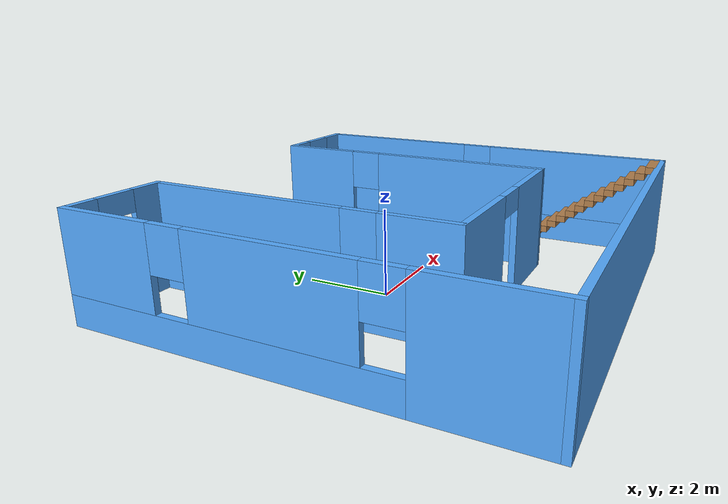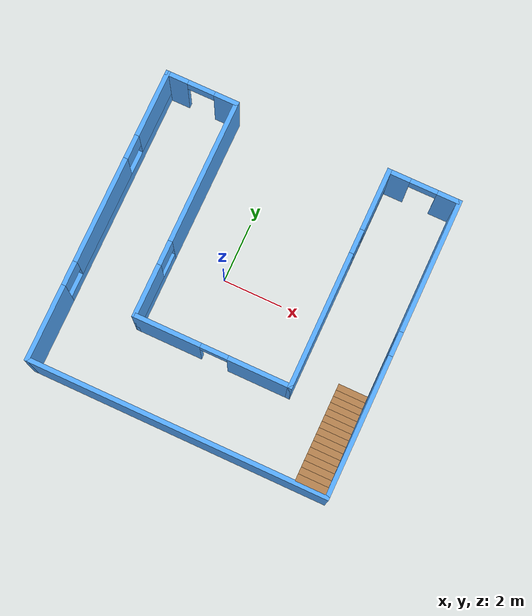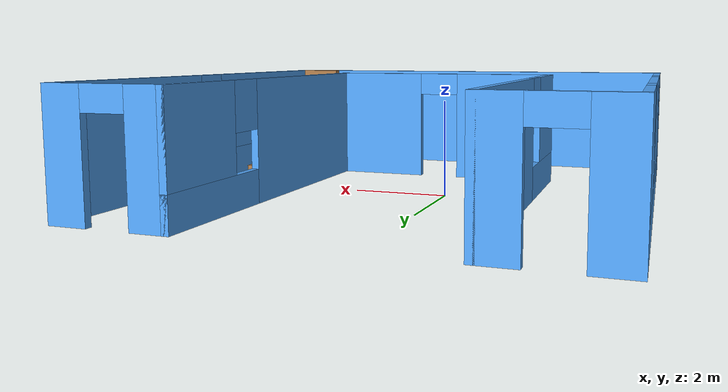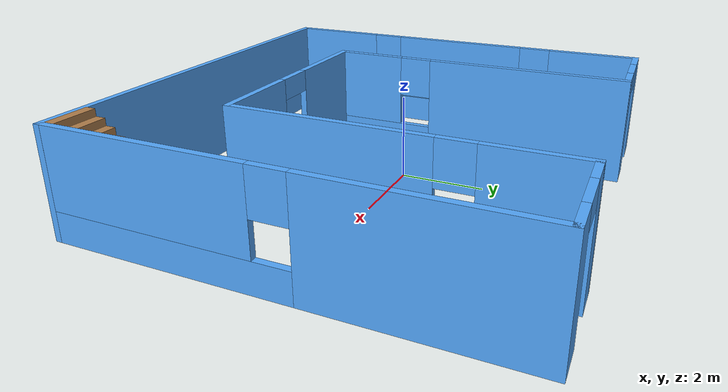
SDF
<?xml version='1.0'?>
<sdf version='1.6'>
  <model name='mybuilding'>
    <pose frame=''>0.795 -0.124998 0 0 -0 0</pose>
    <link name='Stairs_0'>
      <visual name='Stairs_0_Visual_0'>
        <pose frame=''>4.355 -1.49167 0.083333 0 -0 0</pose>
        <geometry>
          <box>
            <size>1 0.233333 0.166667</size>
          </box>
        </geometry>
        <material>
          <script>
            <uri>file://media/materials/scripts/gazebo.material</uri>
            <name>Gazebo/Wood</name>
          </script>
          <ambient>1 1 1 1</ambient>
        </material>
        <meta>
          <layer>0</layer>
        </meta>
      </visual>
      <collision name='Stairs_0_Collision_0'>
        <geometry>
          <box>
            <size>1 0.233333 0.166667</size>
          </box>
        </geometry>
        <pose frame=''>4.355 -1.49167 0.083333 0 -0 0</pose>
      </collision>
      <visual name='Stairs_0_Visual_1'>
        <pose frame=''>4.355 -1.725 0.25 0 -0 0</pose>
        <geometry>
          <box>
            <size>1 0.233333 0.166667</size>
          </box>
        </geometry>
        <material>
          <script>
            <uri>file://media/materials/scripts/gazebo.material</uri>
            <name>Gazebo/Wood</name>
          </script>
          <ambient>1 1 1 1</ambient>
        </material>
        <meta>
          <layer>0</layer>
        </meta>
      </visual>
      <collision name='Stairs_0_Collision_1'>
        <geometry>
          <box>
            <size>1 0.233333 0.166667</size>
          </box>
        </geometry>
        <pose frame=''>4.355 -1.725 0.25 0 -0 0</pose>
      </collision>
      <visual name='Stairs_0_Visual_2'>
        <pose frame=''>4.355 -1.95833 0.416667 0 -0 0</pose>
        <geometry>
          <box>
            <size>1 0.233333 0.166667</size>
          </box>
        </geometry>
        <material>
          <script>
            <uri>file://media/materials/scripts/gazebo.material</uri>
            <name>Gazebo/Wood</name>
          </script>
          <ambient>1 1 1 1</ambient>
        </material>
        <meta>
          <layer>0</layer>
        </meta>
      </visual>
      <collision name='Stairs_0_Collision_2'>
        <geometry>
          <box>
            <size>1 0.233333 0.166667</size>
          </box>
        </geometry>
        <pose frame=''>4.355 -1.95833 0.416667 0 -0 0</pose>
      </collision>
      <visual name='Stairs_0_Visual_3'>
        <pose frame=''>4.355 -2.19167 0.583333 0 -0 0</pose>
        <geometry>
          <box>
            <size>1 0.233333 0.166667</size>
          </box>
        </geometry>
        <material>
          <script>
            <uri>file://media/materials/scripts/gazebo.material</uri>
            <name>Gazebo/Wood</name>
          </script>
          <ambient>1 1 1 1</ambient>
        </material>
        <meta>
          <layer>0</layer>
        </meta>
      </visual>
      <collision name='Stairs_0_Collision_3'>
        <geometry>
          <box>
            <size>1 0.233333 0.166667</size>
          </box>
        </geometry>
        <pose frame=''>4.355 -2.19167 0.583333 0 -0 0</pose>
      </collision>
      <visual name='Stairs_0_Visual_4'>
        <pose frame=''>4.355 -2.425 0.75 0 -0 0</pose>
        <geometry>
          <box>
            <size>1 0.233333 0.166667</size>
          </box>
        </geometry>
        <material>
          <script>
            <uri>file://media/materials/scripts/gazebo.material</uri>
            <name>Gazebo/Wood</name>
          </script>
          <ambient>1 1 1 1</ambient>
        </material>
        <meta>
          <layer>0</layer>
        </meta>
      </visual>
      <collision name='Stairs_0_Collision_4'>
        <geometry>
          <box>
            <size>1 0.233333 0.166667</size>
          </box>
        </geometry>
        <pose frame=''>4.355 -2.425 0.75 0 -0 0</pose>
      </collision>
      <visual name='Stairs_0_Visual_5'>
        <pose frame=''>4.355 -2.65834 0.916667 0 -0 0</pose>
        <geometry>
          <box>
            <size>1 0.233333 0.166667</size>
          </box>
        </geometry>
        <material>
          <script>
            <uri>file://media/materials/scripts/gazebo.material</uri>
            <name>Gazebo/Wood</name>
          </script>
          <ambient>1 1 1 1</ambient>
        </material>
        <meta>
          <layer>0</layer>
        </meta>
      </visual>
      <collision name='Stairs_0_Collision_5'>
        <geometry>
          <box>
            <size>1 0.233333 0.166667</size>
          </box>
        </geometry>
        <pose frame=''>4.355 -2.65834 0.916667 0 -0 0</pose>
      </collision>
      <visual name='Stairs_0_Visual_6'>
        <pose frame=''>4.355 -2.89167 1.08333 0 -0 0</pose>
        <geometry>
          <box>
            <size>1 0.233333 0.166667</size>
          </box>
        </geometry>
        <material>
          <script>
            <uri>file://media/materials/scripts/gazebo.material</uri>
            <name>Gazebo/Wood</name>
          </script>
          <ambient>1 1 1 1</ambient>
        </material>
        <meta>
          <layer>0</layer>
        </meta>
      </visual>
      <collision name='Stairs_0_Collision_6'>
        <geometry>
          <box>
            <size>1 0.233333 0.166667</size>
          </box>
        </geometry>
        <pose frame=''>4.355 -2.89167 1.08333 0 -0 0</pose>
      </collision>
      <visual name='Stairs_0_Visual_7'>
        <pose frame=''>4.355 -3.125 1.25 0 -0 0</pose>
        <geometry>
          <box>
            <size>1 0.233333 0.166667</size>
          </box>
        </geometry>
        <material>
          <script>
            <uri>file://media/materials/scripts/gazebo.material</uri>
            <name>Gazebo/Wood</name>
          </script>
          <ambient>1 1 1 1</ambient>
        </material>
        <meta>
          <layer>0</layer>
        </meta>
      </visual>
      <collision name='Stairs_0_Collision_7'>
        <geometry>
          <box>
            <size>1 0.233333 0.166667</size>
          </box>
        </geometry>
        <pose frame=''>4.355 -3.125 1.25 0 -0 0</pose>
      </collision>
      <visual name='Stairs_0_Visual_8'>
        <pose frame=''>4.355 -3.35833 1.41667 0 -0 0</pose>
        <geometry>
          <box>
            <size>1 0.233333 0.166667</size>
          </box>
        </geometry>
        <material>
          <script>
            <uri>file://media/materials/scripts/gazebo.material</uri>
            <name>Gazebo/Wood</name>
          </script>
          <ambient>1 1 1 1</ambient>
        </material>
        <meta>
          <layer>0</layer>
        </meta>
      </visual>
      <collision name='Stairs_0_Collision_8'>
        <geometry>
          <box>
            <size>1 0.233333 0.166667</size>
          </box>
        </geometry>
        <pose frame=''>4.355 -3.35833 1.41667 0 -0 0</pose>
      </collision>
      <visual name='Stairs_0_Visual_9'>
        <pose frame=''>4.355 -3.59167 1.58333 0 -0 0</pose>
        <geometry>
          <box>
            <size>1 0.233333 0.166667</size>
          </box>
        </geometry>
        <material>
          <script>
            <uri>file://media/materials/scripts/gazebo.material</uri>
            <name>Gazebo/Wood</name>
          </script>
          <ambient>1 1 1 1</ambient>
        </material>
        <meta>
          <layer>0</layer>
        </meta>
      </visual>
      <collision name='Stairs_0_Collision_9'>
        <geometry>
          <box>
            <size>1 0.233333 0.166667</size>
          </box>
        </geometry>
        <pose frame=''>4.355 -3.59167 1.58333 0 -0 0</pose>
      </collision>
      <visual name='Stairs_0_Visual_10'>
        <pose frame=''>4.355 -3.825 1.75 0 -0 0</pose>
        <geometry>
          <box>
            <size>1 0.233333 0.166667</size>
          </box>
        </geometry>
        <material>
          <script>
            <uri>file://media/materials/scripts/gazebo.material</uri>
            <name>Gazebo/Wood</name>
          </script>
          <ambient>1 1 1 1</ambient>
        </material>
        <meta>
          <layer>0</layer>
        </meta>
      </visual>
      <collision name='Stairs_0_Collision_10'>
        <geometry>
          <box>
            <size>1 0.233333 0.166667</size>
          </box>
        </geometry>
        <pose frame=''>4.355 -3.825 1.75 0 -0 0</pose>
      </collision>
      <visual name='Stairs_0_Visual_11'>
        <pose frame=''>4.355 -4.05833 1.91667 0 -0 0</pose>
        <geometry>
          <box>
            <size>1 0.233333 0.166667</size>
          </box>
        </geometry>
        <material>
          <script>
            <uri>file://media/materials/scripts/gazebo.material</uri>
            <name>Gazebo/Wood</name>
          </script>
          <ambient>1 1 1 1</ambient>
        </material>
        <meta>
          <layer>0</layer>
        </meta>
      </visual>
      <collision name='Stairs_0_Collision_11'>
        <geometry>
          <box>
            <size>1 0.233333 0.166667</size>
          </box>
        </geometry>
        <pose frame=''>4.355 -4.05833 1.91667 0 -0 0</pose>
      </collision>
      <visual name='Stairs_0_Visual_12'>
        <pose frame=''>4.355 -4.29167 2.08333 0 -0 0</pose>
        <geometry>
          <box>
            <size>1 0.233333 0.166667</size>
          </box>
        </geometry>
        <material>
          <script>
            <uri>file://media/materials/scripts/gazebo.material</uri>
            <name>Gazebo/Wood</name>
          </script>
          <ambient>1 1 1 1</ambient>
        </material>
        <meta>
          <layer>0</layer>
        </meta>
      </visual>
      <collision name='Stairs_0_Collision_12'>
        <geometry>
          <box>
            <size>1 0.233333 0.166667</size>
          </box>
        </geometry>
        <pose frame=''>4.355 -4.29167 2.08333 0 -0 0</pose>
      </collision>
      <visual name='Stairs_0_Visual_13'>
        <pose frame=''>4.355 -4.525 2.25 0 -0 0</pose>
        <geometry>
          <box>
            <size>1 0.233333 0.166667</size>
          </box>
        </geometry>
        <material>
          <script>
            <uri>file://media/materials/scripts/gazebo.material</uri>
            <name>Gazebo/Wood</name>
          </script>
          <ambient>1 1 1 1</ambient>
        </material>
        <meta>
          <layer>0</layer>
        </meta>
      </visual>
      <collision name='Stairs_0_Collision_13'>
        <geometry>
          <box>
            <size>1 0.233333 0.166667</size>
          </box>
        </geometry>
        <pose frame=''>4.355 -4.525 2.25 0 -0 0</pose>
      </collision>
      <visual name='Stairs_0_Visual_14'>
        <pose frame=''>4.355 -4.75833 2.41667 0 -0 0</pose>
        <geometry>
          <box>
            <size>1 0.233333 0.166667</size>
          </box>
        </geometry>
        <material>
          <script>
            <uri>file://media/materials/scripts/gazebo.material</uri>
            <name>Gazebo/Wood</name>
          </script>
          <ambient>1 1 1 1</ambient>
        </material>
        <meta>
          <layer>0</layer>
        </meta>
      </visual>
      <collision name='Stairs_0_Collision_14'>
        <geometry>
          <box>
            <size>1 0.233333 0.166667</size>
          </box>
        </geometry>
        <pose frame=''>4.355 -4.75833 2.41667 0 -0 0</pose>
      </collision>
    </link>
    <link name='Wall_40'>
      <pose frame=''>-3.75 4.925 0 0 -0 0</pose>
      <visual name='Wall_40_Visual_0'>
        <pose frame=''>-0.8575 0 1.25 0 -0 0</pose>
        <geometry>
          <box>
            <size>0.785 0.15 2.5</size>
          </box>
        </geometry>
        <material>
          <script>
            <uri>file://media/materials/scripts/gazebo.material</uri>
            <name>Gazebo/Grey</name>
          </script>
          <ambient>0.333333 0.666667 1 1</ambient>
        </material>
        <meta>
          <layer>0</layer>
        </meta>
      </visual>
      <collision name='Wall_40_Collision_0'>
        <geometry>
          <box>
            <size>0.785 0.15 2.5</size>
          </box>
        </geometry>
        <pose frame=''>-0.8575 0 1.25 0 -0 0</pose>
      </collision>
      <visual name='Wall_40_Visual_1'>
        <pose frame=''>0.8425 0 1.25 0 -0 0</pose>
        <geometry>
          <box>
            <size>0.815 0.15 2.5</size>
          </box>
        </geometry>
        <material>
          <script>
            <uri>file://media/materials/scripts/gazebo.material</uri>
            <name>Gazebo/Grey</name>
          </script>
          <ambient>0.333333 0.666667 1 1</ambient>
        </material>
        <meta>
          <layer>0</layer>
        </meta>
      </visual>
      <collision name='Wall_40_Collision_1'>
        <geometry>
          <box>
            <size>0.815 0.15 2.5</size>
          </box>
        </geometry>
        <pose frame=''>0.8425 0 1.25 0 -0 0</pose>
      </collision>
      <visual name='Wall_40_Visual_2'>
        <pose frame=''>-0.015 0 2.25 0 -0 0</pose>
        <geometry>
          <box>
            <size>0.9 0.15 0.5</size>
          </box>
        </geometry>
        <material>
          <script>
            <uri>file://media/materials/scripts/gazebo.material</uri>
            <name>Gazebo/Grey</name>
          </script>
          <ambient>0.333333 0.666667 1 1</ambient>
        </material>
        <meta>
          <layer>0</layer>
        </meta>
      </visual>
      <collision name='Wall_40_Collision_2'>
        <geometry>
          <box>
            <size>0.9 0.15 0.5</size>
          </box>
        </geometry>
        <pose frame=''>-0.015 0 2.25 0 -0 0</pose>
      </collision>
    </link>
    <link name='Wall_41'>
      <pose frame=''>-2.575 1.275 0 0 0 -1.5708</pose>
      <visual name='Wall_41_Visual_0'>
        <pose frame=''>-1.2925 0 1.25 0 -0 0</pose>
        <geometry>
          <box>
            <size>4.865 0.15 2.5</size>
          </box>
        </geometry>
        <material>
          <script>
            <uri>file://media/materials/scripts/gazebo.material</uri>
            <name>Gazebo/Grey</name>
          </script>
          <ambient>0.333333 0.666667 1 1</ambient>
        </material>
        <meta>
          <layer>0</layer>
        </meta>
      </visual>
      <collision name='Wall_41_Collision_0'>
        <geometry>
          <box>
            <size>4.865 0.15 2.5</size>
          </box>
        </geometry>
        <pose frame=''>-1.2925 0 1.25 0 -0 0</pose>
      </collision>
      <visual name='Wall_41_Visual_1'>
        <pose frame=''>2.4325 0 0.35 0 -0 0</pose>
        <geometry>
          <box>
            <size>2.585 0.15 0.7</size>
          </box>
        </geometry>
        <material>
          <script>
            <uri>file://media/materials/scripts/gazebo.material</uri>
            <name>Gazebo/Grey</name>
          </script>
          <ambient>0.333333 0.666667 1 1</ambient>
        </material>
        <meta>
          <layer>0</layer>
        </meta>
      </visual>
      <collision name='Wall_41_Collision_1'>
        <geometry>
          <box>
            <size>2.585 0.15 0.7</size>
          </box>
        </geometry>
        <pose frame=''>2.4325 0 0.35 0 -0 0</pose>
      </collision>
      <visual name='Wall_41_Visual_2'>
        <pose frame=''>2.8325 0 1.6 0 -0 0</pose>
        <geometry>
          <box>
            <size>1.785 0.15 1.8</size>
          </box>
        </geometry>
        <material>
          <script>
            <uri>file://media/materials/scripts/gazebo.material</uri>
            <name>Gazebo/Grey</name>
          </script>
          <ambient>0.333333 0.666667 1 1</ambient>
        </material>
        <meta>
          <layer>0</layer>
        </meta>
      </visual>
      <collision name='Wall_41_Collision_2'>
        <geometry>
          <box>
            <size>1.785 0.15 1.8</size>
          </box>
        </geometry>
        <pose frame=''>2.8325 0 1.6 0 -0 0</pose>
      </collision>
      <visual name='Wall_41_Visual_3'>
        <pose frame=''>1.54 0 2 0 -0 0</pose>
        <geometry>
          <box>
            <size>0.8 0.15 1</size>
          </box>
        </geometry>
        <material>
          <script>
            <uri>file://media/materials/scripts/gazebo.material</uri>
            <name>Gazebo/Grey</name>
          </script>
          <ambient>0.333333 0.666667 1 1</ambient>
        </material>
        <meta>
          <layer>0</layer>
        </meta>
      </visual>
      <collision name='Wall_41_Collision_3'>
        <geometry>
          <box>
            <size>0.8 0.15 1</size>
          </box>
        </geometry>
        <pose frame=''>1.54 0 2 0 -0 0</pose>
      </collision>
    </link>
    <link name='Wall_42'>
      <pose frame=''>0 -2.375 0 0 -0 0</pose>
      <visual name='Wall_42_Visual_0'>
        <pose frame=''>-1.5175 0 1.25 0 -0 0</pose>
        <geometry>
          <box>
            <size>2.265 0.15 2.5</size>
          </box>
        </geometry>
        <material>
          <script>
            <uri>file://media/materials/scripts/gazebo.material</uri>
            <name>Gazebo/Grey</name>
          </script>
          <ambient>0.333333 0.666667 1 1</ambient>
        </material>
        <meta>
          <layer>0</layer>
        </meta>
      </visual>
      <collision name='Wall_42_Collision_0'>
        <geometry>
          <box>
            <size>2.265 0.15 2.5</size>
          </box>
        </geometry>
        <pose frame=''>-1.5175 0 1.25 0 -0 0</pose>
      </collision>
      <visual name='Wall_42_Visual_1'>
        <pose frame=''>1.5825 0 1.25 0 -0 0</pose>
        <geometry>
          <box>
            <size>2.135 0.15 2.5</size>
          </box>
        </geometry>
        <material>
          <script>
            <uri>file://media/materials/scripts/gazebo.material</uri>
            <name>Gazebo/Grey</name>
          </script>
          <ambient>0.333333 0.666667 1 1</ambient>
        </material>
        <meta>
          <layer>0</layer>
        </meta>
      </visual>
      <collision name='Wall_42_Collision_1'>
        <geometry>
          <box>
            <size>2.135 0.15 2.5</size>
          </box>
        </geometry>
        <pose frame=''>1.5825 0 1.25 0 -0 0</pose>
      </collision>
      <visual name='Wall_42_Visual_2'>
        <pose frame=''>0.065 0 2.25 0 -0 0</pose>
        <geometry>
          <box>
            <size>0.9 0.15 0.5</size>
          </box>
        </geometry>
        <material>
          <script>
            <uri>file://media/materials/scripts/gazebo.material</uri>
            <name>Gazebo/Grey</name>
          </script>
          <ambient>0.333333 0.666667 1 1</ambient>
        </material>
        <meta>
          <layer>0</layer>
        </meta>
      </visual>
      <collision name='Wall_42_Collision_2'>
        <geometry>
          <box>
            <size>0.9 0.15 0.5</size>
          </box>
        </geometry>
        <pose frame=''>0.065 0 2.25 0 -0 0</pose>
      </collision>
    </link>
    <link name='Wall_43'>
      <pose frame=''>2.575 1.275 0 0 -0 1.5708</pose>
      <visual name='Wall_43_Visual_0'>
        <pose frame=''>-1.4525 0 1.25 0 -0 0</pose>
        <geometry>
          <box>
            <size>4.545 0.15 2.5</size>
          </box>
        </geometry>
        <material>
          <script>
            <uri>file://media/materials/scripts/gazebo.material</uri>
            <name>Gazebo/Grey</name>
          </script>
          <ambient>0.333333 0.666667 1 1</ambient>
        </material>
        <meta>
          <layer>0</layer>
        </meta>
      </visual>
      <collision name='Wall_43_Collision_0'>
        <geometry>
          <box>
            <size>4.545 0.15 2.5</size>
          </box>
        </geometry>
        <pose frame=''>-1.4525 0 1.25 0 -0 0</pose>
      </collision>
      <visual name='Wall_43_Visual_1'>
        <pose frame=''>2.2725 0 0.35 0 -0 0</pose>
        <geometry>
          <box>
            <size>2.905 0.15 0.7</size>
          </box>
        </geometry>
        <material>
          <script>
            <uri>file://media/materials/scripts/gazebo.material</uri>
            <name>Gazebo/Grey</name>
          </script>
          <ambient>0.333333 0.666667 1 1</ambient>
        </material>
        <meta>
          <layer>0</layer>
        </meta>
      </visual>
      <collision name='Wall_43_Collision_1'>
        <geometry>
          <box>
            <size>2.905 0.15 0.7</size>
          </box>
        </geometry>
        <pose frame=''>2.2725 0 0.35 0 -0 0</pose>
      </collision>
      <visual name='Wall_43_Visual_2'>
        <pose frame=''>2.6725 0 1.6 0 -0 0</pose>
        <geometry>
          <box>
            <size>2.105 0.15 1.8</size>
          </box>
        </geometry>
        <material>
          <script>
            <uri>file://media/materials/scripts/gazebo.material</uri>
            <name>Gazebo/Grey</name>
          </script>
          <ambient>0.333333 0.666667 1 1</ambient>
        </material>
        <meta>
          <layer>0</layer>
        </meta>
      </visual>
      <collision name='Wall_43_Collision_2'>
        <geometry>
          <box>
            <size>2.105 0.15 1.8</size>
          </box>
        </geometry>
        <pose frame=''>2.6725 0 1.6 0 -0 0</pose>
      </collision>
      <visual name='Wall_43_Visual_3'>
        <pose frame=''>1.22 0 2 0 -0 0</pose>
        <geometry>
          <box>
            <size>0.8 0.15 1</size>
          </box>
        </geometry>
        <material>
          <script>
            <uri>file://media/materials/scripts/gazebo.material</uri>
            <name>Gazebo/Grey</name>
          </script>
          <ambient>0.333333 0.666667 1 1</ambient>
        </material>
        <meta>
          <layer>0</layer>
        </meta>
      </visual>
      <collision name='Wall_43_Collision_3'>
        <geometry>
          <box>
            <size>0.8 0.15 1</size>
          </box>
        </geometry>
        <pose frame=''>1.22 0 2 0 -0 0</pose>
      </collision>
    </link>
    <link name='Wall_44'>
      <pose frame=''>3.75 4.925 0 0 -0 0</pose>
      <visual name='Wall_44_Visual_0'>
        <pose frame=''>-0.8525 0 1.25 0 -0 0</pose>
        <geometry>
          <box>
            <size>0.795 0.15 2.5</size>
          </box>
        </geometry>
        <material>
          <script>
            <uri>file://media/materials/scripts/gazebo.material</uri>
            <name>Gazebo/Grey</name>
          </script>
          <ambient>0.333333 0.666667 1 1</ambient>
        </material>
        <meta>
          <layer>0</layer>
        </meta>
      </visual>
      <collision name='Wall_44_Collision_0'>
        <geometry>
          <box>
            <size>0.795 0.15 2.5</size>
          </box>
        </geometry>
        <pose frame=''>-0.8525 0 1.25 0 -0 0</pose>
      </collision>
      <visual name='Wall_44_Visual_1'>
        <pose frame=''>0.8475 0 1.25 0 -0 0</pose>
        <geometry>
          <box>
            <size>0.805 0.15 2.5</size>
          </box>
        </geometry>
        <material>
          <script>
            <uri>file://media/materials/scripts/gazebo.material</uri>
            <name>Gazebo/Grey</name>
          </script>
          <ambient>0.333333 0.666667 1 1</ambient>
        </material>
        <meta>
          <layer>0</layer>
        </meta>
      </visual>
      <collision name='Wall_44_Collision_1'>
        <geometry>
          <box>
            <size>0.805 0.15 2.5</size>
          </box>
        </geometry>
        <pose frame=''>0.8475 0 1.25 0 -0 0</pose>
      </collision>
      <visual name='Wall_44_Visual_2'>
        <pose frame=''>-0.005 0 2.25 0 -0 0</pose>
        <geometry>
          <box>
            <size>0.9 0.15 0.5</size>
          </box>
        </geometry>
        <material>
          <script>
            <uri>file://media/materials/scripts/gazebo.material</uri>
            <name>Gazebo/Grey</name>
          </script>
          <ambient>0.333333 0.666667 1 1</ambient>
        </material>
        <meta>
          <layer>0</layer>
        </meta>
      </visual>
      <collision name='Wall_44_Collision_2'>
        <geometry>
          <box>
            <size>0.9 0.15 0.5</size>
          </box>
        </geometry>
        <pose frame=''>-0.005 0 2.25 0 -0 0</pose>
      </collision>
    </link>
    <link name='Wall_45'>
      <pose frame=''>4.925 -2e-06 0 0 0 -1.5708</pose>
      <visual name='Wall_45_Visual_0'>
        <pose frame=''>-2.7575 0 1.25 0 -0 0</pose>
        <geometry>
          <box>
            <size>4.485 0.15 2.5</size>
          </box>
        </geometry>
        <material>
          <script>
            <uri>file://media/materials/scripts/gazebo.material</uri>
            <name>Gazebo/Grey</name>
          </script>
          <ambient>0.333333 0.666667 1 1</ambient>
        </material>
        <meta>
          <layer>0</layer>
        </meta>
      </visual>
      <collision name='Wall_45_Collision_0'>
        <geometry>
          <box>
            <size>4.485 0.15 2.5</size>
          </box>
        </geometry>
        <pose frame=''>-2.7575 0 1.25 0 -0 0</pose>
      </collision>
      <visual name='Wall_45_Visual_1'>
        <pose frame=''>2.2425 0 0.35 0 -0 0</pose>
        <geometry>
          <box>
            <size>5.515 0.15 0.7</size>
          </box>
        </geometry>
        <material>
          <script>
            <uri>file://media/materials/scripts/gazebo.material</uri>
            <name>Gazebo/Grey</name>
          </script>
          <ambient>0.333333 0.666667 1 1</ambient>
        </material>
        <meta>
          <layer>0</layer>
        </meta>
      </visual>
      <collision name='Wall_45_Collision_1'>
        <geometry>
          <box>
            <size>5.515 0.15 0.7</size>
          </box>
        </geometry>
        <pose frame=''>2.2425 0 0.35 0 -0 0</pose>
      </collision>
      <visual name='Wall_45_Visual_2'>
        <pose frame=''>2.6425 0 1.6 0 -0 0</pose>
        <geometry>
          <box>
            <size>4.715 0.15 1.8</size>
          </box>
        </geometry>
        <material>
          <script>
            <uri>file://media/materials/scripts/gazebo.material</uri>
            <name>Gazebo/Grey</name>
          </script>
          <ambient>0.333333 0.666667 1 1</ambient>
        </material>
        <meta>
          <layer>0</layer>
        </meta>
      </visual>
      <collision name='Wall_45_Collision_2'>
        <geometry>
          <box>
            <size>4.715 0.15 1.8</size>
          </box>
        </geometry>
        <pose frame=''>2.6425 0 1.6 0 -0 0</pose>
      </collision>
      <visual name='Wall_45_Visual_3'>
        <pose frame=''>-0.115 0 2 0 -0 0</pose>
        <geometry>
          <box>
            <size>0.8 0.15 1</size>
          </box>
        </geometry>
        <material>
          <script>
            <uri>file://media/materials/scripts/gazebo.material</uri>
            <name>Gazebo/Grey</name>
          </script>
          <ambient>0.333333 0.666667 1 1</ambient>
        </material>
        <meta>
          <layer>0</layer>
        </meta>
      </visual>
      <collision name='Wall_45_Collision_3'>
        <geometry>
          <box>
            <size>0.8 0.15 1</size>
          </box>
        </geometry>
        <pose frame=''>-0.115 0 2 0 -0 0</pose>
      </collision>
    </link>
    <link name='Wall_46'>
      <collision name='Wall_46_Collision'>
        <geometry>
          <box>
            <size>10 0.15 2.5</size>
          </box>
        </geometry>
        <pose frame=''>0 0 1.25 0 -0 0</pose>
      </collision>
      <visual name='Wall_46_Visual'>
        <pose frame=''>0 0 1.25 0 -0 0</pose>
        <geometry>
          <box>
            <size>10 0.15 2.5</size>
          </box>
        </geometry>
        <material>
          <script>
            <uri>file://media/materials/scripts/gazebo.material</uri>
            <name>Gazebo/Grey</name>
          </script>
          <ambient>0.333333 0.666667 1 1</ambient>
        </material>
        <meta>
          <layer>0</layer>
        </meta>
      </visual>
      <pose frame=''>0 -4.925 0 0 -0 3.14159</pose>
    </link>
    <link name='Wall_47'>
      <pose frame=''>-4.925 -2e-06 0 0 -0 1.5708</pose>
      <visual name='Wall_47_Visual_0'>
        <pose frame=''>-3.7225 0 1.25 0 -0 0</pose>
        <geometry>
          <box>
            <size>2.555 0.15 2.5</size>
          </box>
        </geometry>
        <material>
          <script>
            <uri>file://media/materials/scripts/gazebo.material</uri>
            <name>Gazebo/Grey</name>
          </script>
          <ambient>0.333333 0.666667 1 1</ambient>
        </material>
        <meta>
          <layer>0</layer>
        </meta>
      </visual>
      <collision name='Wall_47_Collision_0'>
        <geometry>
          <box>
            <size>2.555 0.15 2.5</size>
          </box>
        </geometry>
        <pose frame=''>-3.7225 0 1.25 0 -0 0</pose>
      </collision>
      <visual name='Wall_47_Visual_1'>
        <pose frame=''>1.2775 0 0.35 0 -0 0</pose>
        <geometry>
          <box>
            <size>7.445 0.15 0.7</size>
          </box>
        </geometry>
        <material>
          <script>
            <uri>file://media/materials/scripts/gazebo.material</uri>
            <name>Gazebo/Grey</name>
          </script>
          <ambient>0.333333 0.666667 1 1</ambient>
        </material>
        <meta>
          <layer>0</layer>
        </meta>
      </visual>
      <collision name='Wall_47_Collision_1'>
        <geometry>
          <box>
            <size>7.445 0.15 0.7</size>
          </box>
        </geometry>
        <pose frame=''>1.2775 0 0.35 0 -0 0</pose>
      </collision>
      <visual name='Wall_47_Visual_2'>
        <pose frame=''>0.135 0 1.6 0 -0 0</pose>
        <geometry>
          <box>
            <size>3.56 0.15 1.8</size>
          </box>
        </geometry>
        <material>
          <script>
            <uri>file://media/materials/scripts/gazebo.material</uri>
            <name>Gazebo/Grey</name>
          </script>
          <ambient>0.333333 0.666667 1 1</ambient>
        </material>
        <meta>
          <layer>0</layer>
        </meta>
      </visual>
      <collision name='Wall_47_Collision_2'>
        <geometry>
          <box>
            <size>3.56 0.15 1.8</size>
          </box>
        </geometry>
        <pose frame=''>0.135 0 1.6 0 -0 0</pose>
      </collision>
      <visual name='Wall_47_Visual_3'>
        <pose frame=''>3.8575 0 1.6 0 -0 0</pose>
        <geometry>
          <box>
            <size>2.285 0.15 1.8</size>
          </box>
        </geometry>
        <material>
          <script>
            <uri>file://media/materials/scripts/gazebo.material</uri>
            <name>Gazebo/Grey</name>
          </script>
          <ambient>0.333333 0.666667 1 1</ambient>
        </material>
        <meta>
          <layer>0</layer>
        </meta>
      </visual>
      <collision name='Wall_47_Collision_3'>
        <geometry>
          <box>
            <size>2.285 0.15 1.8</size>
          </box>
        </geometry>
        <pose frame=''>3.8575 0 1.6 0 -0 0</pose>
      </collision>
      <visual name='Wall_47_Visual_4'>
        <pose frame=''>-2.045 0 2 0 -0 0</pose>
        <geometry>
          <box>
            <size>0.8 0.15 1</size>
          </box>
        </geometry>
        <material>
          <script>
            <uri>file://media/materials/scripts/gazebo.material</uri>
            <name>Gazebo/Grey</name>
          </script>
          <ambient>0.333333 0.666667 1 1</ambient>
        </material>
        <meta>
          <layer>0</layer>
        </meta>
      </visual>
      <collision name='Wall_47_Collision_4'>
        <geometry>
          <box>
            <size>0.8 0.15 1</size>
          </box>
        </geometry>
        <pose frame=''>-2.045 0 2 0 -0 0</pose>
      </collision>
      <visual name='Wall_47_Visual_5'>
        <pose frame=''>2.315 0 2 0 -0 0</pose>
        <geometry>
          <box>
            <size>0.8 0.15 1</size>
          </box>
        </geometry>
        <material>
          <script>
            <uri>file://media/materials/scripts/gazebo.material</uri>
            <name>Gazebo/Grey</name>
          </script>
          <ambient>0.333333 0.666667 1 1</ambient>
        </material>
        <meta>
          <layer>0</layer>
        </meta>
      </visual>
      <collision name='Wall_47_Collision_5'>
        <geometry>
          <box>
            <size>0.8 0.15 1</size>
          </box>
        </geometry>
        <pose frame=''>2.315 0 2 0 -0 0</pose>
      </collision>
    </link>
    <static>1</static>
  </model>
</sdf>
